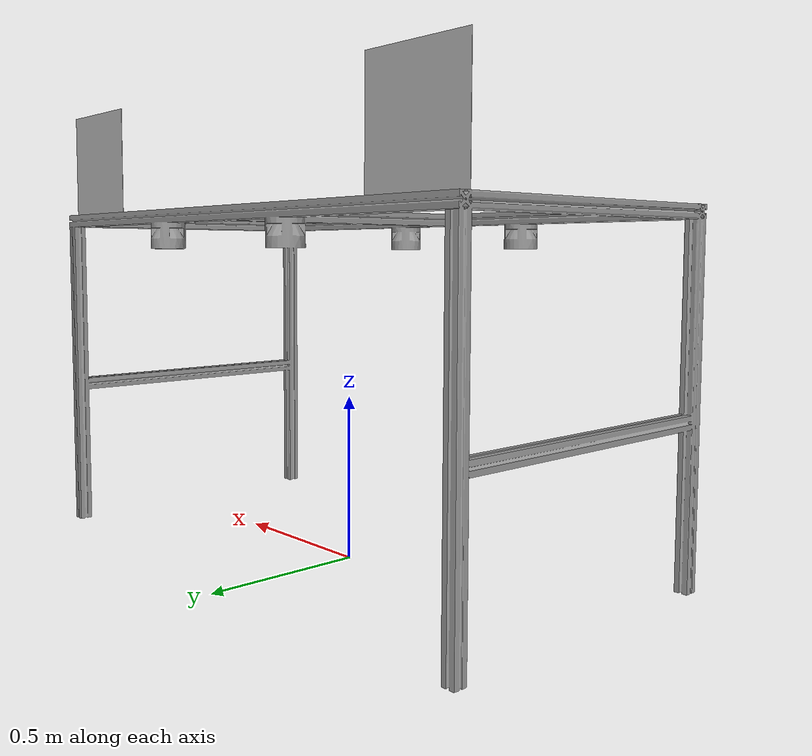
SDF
<?xml version='1.0'?>
<sdf version='1.6'>
  <model name='Pod_tag'>
    <model name='Pod'>
      <link name='link_0'>
        <inertial>
          <mass>1</mass>
          <inertia>
            <ixx>0.166667</ixx>
            <ixy>0</ixy>
            <ixz>0</ixz>
            <iyy>0.166667</iyy>
            <iyz>0</iyz>
            <izz>0.166667</izz>
          </inertia>
          <pose frame=''>0 0 0 0 -0 0</pose>
        </inertial>
        <pose frame=''>0 0 0 0 -0 0</pose>
        <gravity>1</gravity>
        <self_collide>0</self_collide>
        <kinematic>0</kinematic>
        <enable_wind>0</enable_wind>
        <visual name='visual'>
          <pose frame=''>0 0 0 0 -0 0</pose>
          <geometry>
            <mesh>
              <uri>/home/uma/Desktop/MRSD/Capstone/docking-sim-master/src/align_gazebo/models/Pod/meshes/pod_f.dae</uri>
              <scale>1 1 1</scale>
            </mesh>
          </geometry>
          <material>
            <lighting>1</lighting>
            <script>
              <uri>file://media/materials/scripts/gazebo.material</uri>
              <name>Gazebo/Grey</name>
            </script>
            <shader type='vertex'>
              <normal_map>__default__</normal_map>
            </shader>
            <ambient>0.3 0.3 0.3 1</ambient>
            <diffuse>0.7 0.7 0.7 1</diffuse>
            <specular>0.01 0.01 0.01 1</specular>
            <emissive>0 0 0 1</emissive>
          </material>
          <transparency>0</transparency>
          <cast_shadows>1</cast_shadows>
        </visual>
        <collision name='collision'>
          <laser_retro>0</laser_retro>
          <max_contacts>10</max_contacts>
          <pose frame=''>0 0 0 0 -0 0</pose>
          <geometry>
            <mesh>
              <uri>/home/uma/Desktop/MRSD/Capstone/docking-sim-master/src/align_gazebo/models/Pod/meshes/pod_f.dae</uri>
              <scale>1 1 1</scale>
            </mesh>
          </geometry>
          <surface>
            <friction>
              <ode>
                <mu>1</mu>
                <mu2>1</mu2>
                <fdir1>0 0 0</fdir1>
                <slip1>0</slip1>
                <slip2>0</slip2>
              </ode>
              <torsional>
                <coefficient>1</coefficient>
                <patch_radius>0</patch_radius>
                <surface_radius>0</surface_radius>
                <use_patch_radius>1</use_patch_radius>
                <ode>
                  <slip>0</slip>
                </ode>
              </torsional>
            </friction>
            <bounce>
              <restitution_coefficient>0</restitution_coefficient>
              <threshold>1e+06</threshold>
            </bounce>
            <contact>
              <collide_without_contact>0</collide_without_contact>
              <collide_without_contact_bitmask>1</collide_without_contact_bitmask>
              <collide_bitmask>1</collide_bitmask>
              <ode>
                <soft_cfm>0</soft_cfm>
                <soft_erp>0.2</soft_erp>
                <kp>1e+13</kp>
                <kd>1</kd>
                <max_vel>0.01</max_vel>
                <min_depth>0</min_depth>
              </ode>
              <bullet>
                <split_impulse>1</split_impulse>
                <split_impulse_penetration_threshold>-0.01</split_impulse_penetration_threshold>
                <soft_cfm>0</soft_cfm>
                <soft_erp>0.2</soft_erp>
                <kp>1e+13</kp>
                <kd>1</kd>
              </bullet>
            </contact>
          </surface>
        </collision>
      </link>
      <static>0</static>
      <allow_auto_disable>1</allow_auto_disable>
      <pose frame=''>0 0 0 0 -0 0</pose>
    </model>
    <model name='Tag1'>
      <static>1</static>
      <link name='link'>
        <pose frame=''>0 0 0.1 0 -0 0</pose>
        <collision name='collision'>
          <geometry>
            <box>
              <size>0.323 0.001 0.323</size>
            </box>
          </geometry>
        </collision>
        <visual name='visual'>
          <cast_shadows>0</cast_shadows>
          <geometry>
            <box>
              <size>0.323 0.001 0.323</size>
            </box>
          </geometry>
          <material>
            <script>
		<uri>/home/uma/Desktop/MRSD/Capstone/docking-sim-master/src/align_gazebo/models/pod_tag/Tag1/materials/scripts</uri>
		<uri>/home/uma/Desktop/MRSD/Capstone/docking-sim-master/src/align_gazebo/models/pod_tag/Tag1/materials/textures</uri>
              <name>vrc/Tag1</name>
            </script>
          </material>
        </visual>
      </link>
      <pose frame=''>0.75031 0.437018 1.1256 0 -0 0</pose>
    </model>
    <model name='Tag2'>
      <static>1</static>
      <link name='link'>
        <pose frame=''>0 0 0.1 0 1.57 0</pose>
        <collision name='collision'>
          <geometry>
            <box>
              <size>0.323 0.001 0.323</size>
            </box>
          </geometry>
        </collision>
        <visual name='visual'>
          <cast_shadows>0</cast_shadows>
          <geometry>
            <box>
              <size>0.323 0.001 0.323</size>
            </box>
          </geometry>
          <material>
            <script>
        	<uri>/home/uma/Desktop/MRSD/Capstone/docking-sim-master/src/align_gazebo/models/pod_tag/Tag2/materials/scripts</uri>
		<uri>/home/uma/Desktop/MRSD/Capstone/docking-sim-master/src/align_gazebo/models/pod_tag/Tag2/materials/textures</uri>
              <name>vrc/Tag2</name>
            </script>
          </material>
        </visual>
      </link>
      <pose frame=''>-0.72656 0.437018 1.12573 0 -0 0</pose>
    </model>
    <joint name='link_0_JOINT_8' type='fixed'>
      <parent>Pod::link_0</parent>
      <child>Tag1::link</child>
      <pose frame=''>0 0 0 0 -0 0</pose>
      <physics>
        <ode>
          <limit>
            <cfm>0</cfm>
            <erp>0.2</erp>
          </limit>
          <suspension>
            <cfm>0</cfm>
            <erp>0.2</erp>
          </suspension>
        </ode>
      </physics>
    </joint>
    <joint name='link_0_JOINT_9' type='fixed'>
      <parent>Pod::link_0</parent>
      <child>Tag2::link</child>
      <pose frame=''>0 0 0 0 -0 0</pose>
      <physics>
        <ode>
          <limit>
            <cfm>0</cfm>
            <erp>0.2</erp>
          </limit>
          <suspension>
            <cfm>0</cfm>
            <erp>0.2</erp>
          </suspension>
        </ode>
      </physics>
    </joint>
    <static>0</static>
    <allow_auto_disable>1</allow_auto_disable>
  </model>
</sdf>
